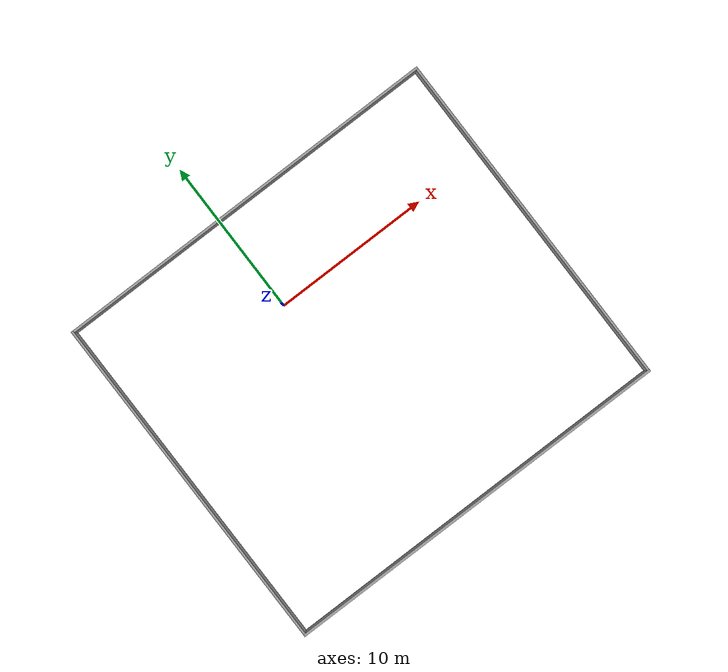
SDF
<?xml version='1.0'?>
<sdf version='1.6'>
  <model name='grocery_store'>
    <pose frame=''>1.92061 -4.90183 0 0 -0 0</pose>
    <link name='Wall_10'>
      <collision name='Wall_10_Collision'>
        <geometry>
          <box>
            <size>25.25 0.15 2.5</size>
          </box>
        </geometry>
        <pose frame=''>0 0 1.25 0 -0 0</pose>
      </collision>
      <visual name='Wall_10_Visual'>
        <pose frame=''>0 0 1.25 0 -0 0</pose>
        <geometry>
          <box>
            <size>25.25 0.15 2.5</size>
          </box>
        </geometry>
        <material>
          <script>
            <uri>file://media/materials/scripts/gazebo.material</uri>
            <name>Gazebo/Grey</name>
          </script>
          <ambient>1 1 1 1</ambient>
        </material>
        <meta>
          <layer>0</layer>
        </meta>
      </visual>
      <pose frame=''>0 -11.05 0 0 -0 3.14159</pose>
    </link>
    <link name='Wall_11'>
      <collision name='Wall_11_Collision'>
        <geometry>
          <box>
            <size>22.25 0.15 2.5</size>
          </box>
        </geometry>
        <pose frame=''>0 0 1.25 0 -0 0</pose>
      </collision>
      <visual name='Wall_11_Visual'>
        <pose frame=''>0 0 1.25 0 -0 0</pose>
        <geometry>
          <box>
            <size>22.25 0.15 2.5</size>
          </box>
        </geometry>
        <material>
          <script>
            <uri>file://media/materials/scripts/gazebo.material</uri>
            <name>Gazebo/Grey</name>
          </script>
          <ambient>1 1 1 1</ambient>
        </material>
        <meta>
          <layer>0</layer>
        </meta>
      </visual>
      <pose frame=''>-12.55 -0 0 0 -0 1.5708</pose>
    </link>
    <link name='Wall_8'>
      <collision name='Wall_8_Collision'>
        <geometry>
          <box>
            <size>25.25 0.15 2.5</size>
          </box>
        </geometry>
        <pose frame=''>0 0 1.25 0 -0 0</pose>
      </collision>
      <visual name='Wall_8_Visual'>
        <pose frame=''>0 0 1.25 0 -0 0</pose>
        <geometry>
          <box>
            <size>25.25 0.15 2.5</size>
          </box>
        </geometry>
        <material>
          <script>
            <uri>file://media/materials/scripts/gazebo.material</uri>
            <name>Gazebo/Grey</name>
          </script>
          <ambient>1 1 1 1</ambient>
        </material>
        <meta>
          <layer>0</layer>
        </meta>
      </visual>
      <pose frame=''>0 11.05 0 0 -0 0</pose>
    </link>
    <link name='Wall_9'>
      <collision name='Wall_9_Collision'>
        <geometry>
          <box>
            <size>22.25 0.15 2.5</size>
          </box>
        </geometry>
        <pose frame=''>0 0 1.25 0 -0 0</pose>
      </collision>
      <visual name='Wall_9_Visual'>
        <pose frame=''>0 0 1.25 0 -0 0</pose>
        <geometry>
          <box>
            <size>22.25 0.15 2.5</size>
          </box>
        </geometry>
        <material>
          <script>
            <uri>file://media/materials/scripts/gazebo.material</uri>
            <name>Gazebo/Grey</name>
          </script>
          <ambient>1 1 1 1</ambient>
        </material>
        <meta>
          <layer>0</layer>
        </meta>
      </visual>
      <pose frame=''>12.55 -0 0 0 -0 -1.5708</pose>
    </link>
    <static>1</static>
  </model>
</sdf>
